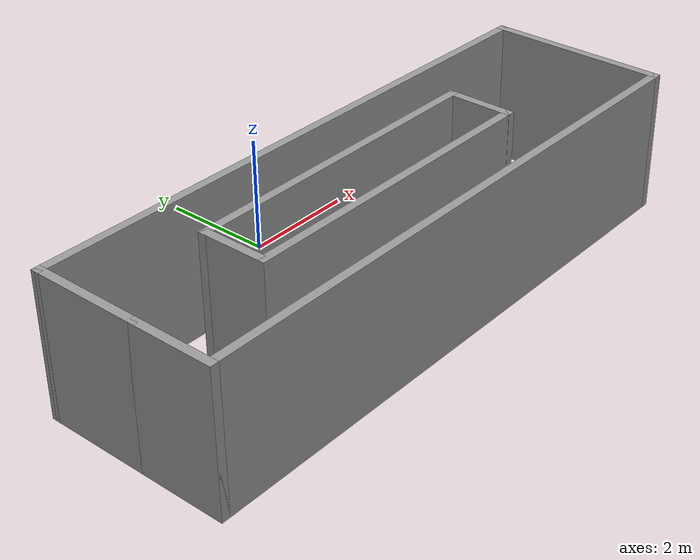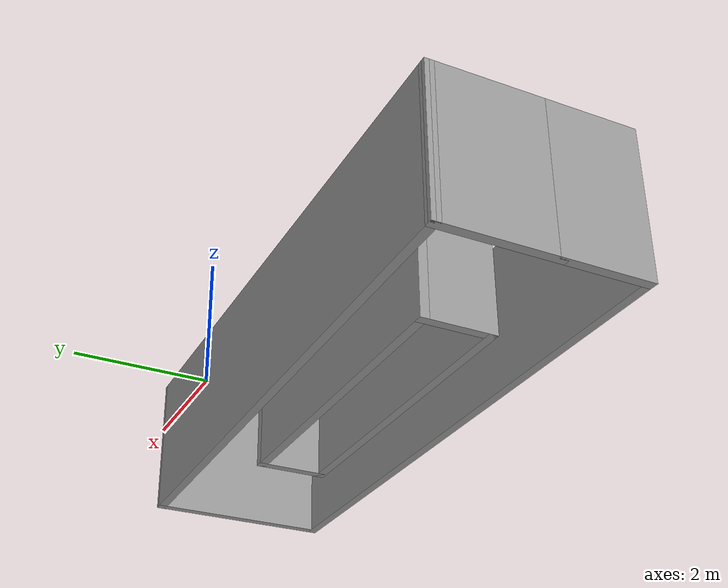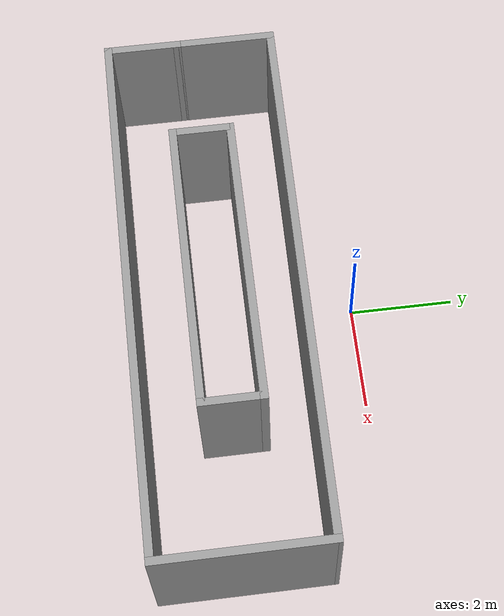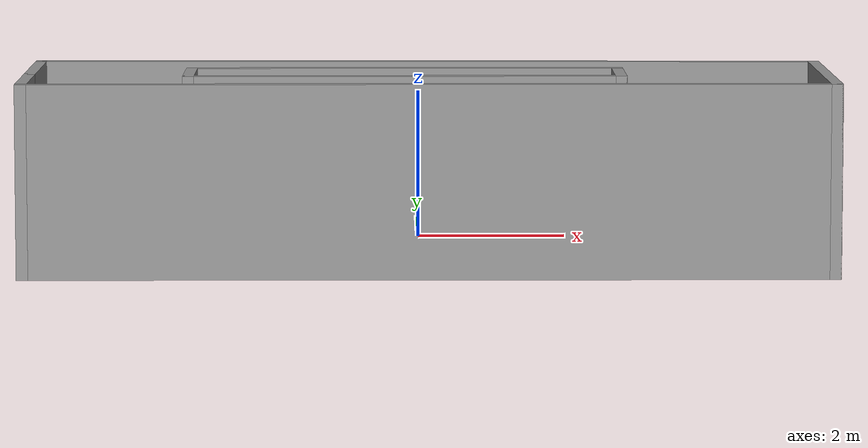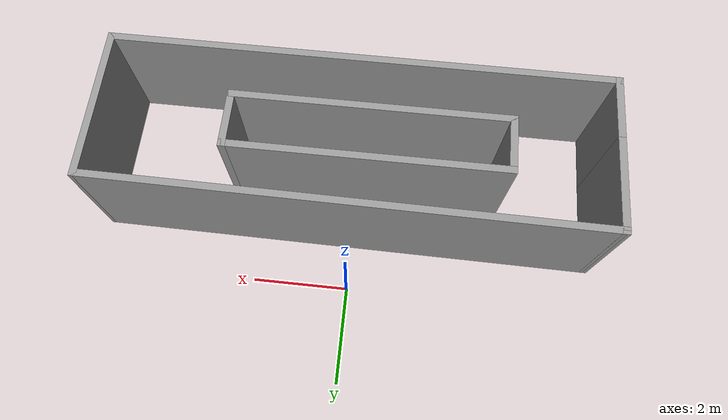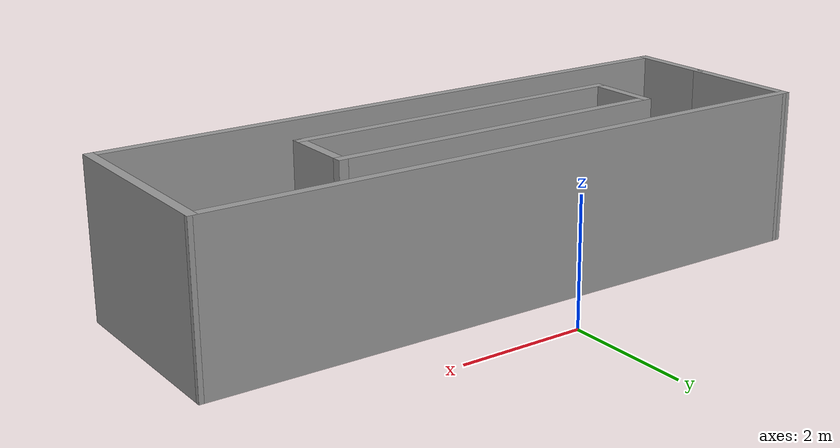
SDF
<?xml version='1.0'?>
<sdf version='1.6'>
  <model name='wu3'>
    <pose frame=''>0.115 -2.57964 0 0 -0 0</pose>
    <link name='Wall_0'>
      <collision name='Wall_0_Collision'>
        <geometry>
          <box>
            <size>2 0.15 2.5</size>
          </box>
        </geometry>
        <pose frame=''>0 0 1.25 0 -0 0</pose>
      </collision>
      <visual name='Wall_0_Visual'>
        <pose frame=''>0 0 1.25 0 -0 0</pose>
        <geometry>
          <box>
            <size>2 0.15 2.5</size>
          </box>
        </geometry>
        <material>
          <script>
            <uri>file://media/materials/scripts/gazebo.material</uri>
            <name>Gazebo/Grey</name>
          </script>
          <ambient>1 1 1 1</ambient>
        </material>
        <meta>
          <layer>0</layer>
        </meta>
      </visual>
      <pose frame=''>-5.175 0.67464 0 0 -0 1.5708</pose>
    </link>
    <link name='Wall_10'>
      <collision name='Wall_10_Collision'>
        <geometry>
          <box>
            <size>5.75 0.15 2.5</size>
          </box>
        </geometry>
        <pose frame=''>0 0 1.25 0 -0 0</pose>
      </collision>
      <visual name='Wall_10_Visual'>
        <pose frame=''>0 0 1.25 0 -0 0</pose>
        <geometry>
          <box>
            <size>5.75 0.15 2.5</size>
          </box>
        </geometry>
        <material>
          <script>
            <uri>file://media/materials/scripts/gazebo.material</uri>
            <name>Gazebo/Grey</name>
          </script>
          <ambient>1 1 1 1</ambient>
        </material>
        <meta>
          <layer>0</layer>
        </meta>
      </visual>
      <pose frame=''>-0.305 0.589639 0 0 -0 3.14159</pose>
    </link>
    <link name='Wall_2'>
      <collision name='Wall_2_Collision'>
        <geometry>
          <box>
            <size>1.5 0.15 2.5</size>
          </box>
        </geometry>
        <pose frame=''>0 0 1.25 0 -0 0</pose>
      </collision>
      <visual name='Wall_2_Visual'>
        <pose frame=''>0 0 1.25 0 -0 0</pose>
        <geometry>
          <box>
            <size>1.5 0.15 2.5</size>
          </box>
        </geometry>
        <material>
          <script>
            <uri>file://media/materials/scripts/gazebo.material</uri>
            <name>Gazebo/Grey</name>
          </script>
          <ambient>1 1 1 1</ambient>
        </material>
        <meta>
          <layer>0</layer>
        </meta>
      </visual>
      <pose frame=''>-5.175 -0.925361 0 0 -0 -1.5708</pose>
    </link>
    <link name='Wall_3'>
      <collision name='Wall_3_Collision'>
        <geometry>
          <box>
            <size>10.5 0.15 2.5</size>
          </box>
        </geometry>
        <pose frame=''>0 0 1.25 0 -0 0</pose>
      </collision>
      <visual name='Wall_3_Visual'>
        <pose frame=''>0 0 1.25 0 -0 0</pose>
        <geometry>
          <box>
            <size>10.5 0.15 2.5</size>
          </box>
        </geometry>
        <material>
          <script>
            <uri>file://media/materials/scripts/gazebo.material</uri>
            <name>Gazebo/Grey</name>
          </script>
          <ambient>1 1 1 1</ambient>
        </material>
        <meta>
          <layer>0</layer>
        </meta>
      </visual>
      <pose frame=''>0 -1.60036 0 0 -0 0</pose>
    </link>
    <link name='Wall_4'>
      <collision name='Wall_4_Collision'>
        <geometry>
          <box>
            <size>3.25 0.15 2.5</size>
          </box>
        </geometry>
        <pose frame=''>0 0 1.25 0 -0 0</pose>
      </collision>
      <visual name='Wall_4_Visual'>
        <pose frame=''>0 0 1.25 0 -0 0</pose>
        <geometry>
          <box>
            <size>3.25 0.15 2.5</size>
          </box>
        </geometry>
        <material>
          <script>
            <uri>file://media/materials/scripts/gazebo.material</uri>
            <name>Gazebo/Grey</name>
          </script>
          <ambient>1 1 1 1</ambient>
        </material>
        <meta>
          <layer>0</layer>
        </meta>
      </visual>
      <pose frame=''>5.175 -0.050361 0 0 -0 1.5708</pose>
    </link>
    <link name='Wall_5'>
      <collision name='Wall_5_Collision'>
        <geometry>
          <box>
            <size>10.5005 0.15 2.5</size>
          </box>
        </geometry>
        <pose frame=''>0 0 1.25 0 -0 0</pose>
      </collision>
      <visual name='Wall_5_Visual'>
        <pose frame=''>0 0 1.25 0 -0 0</pose>
        <geometry>
          <box>
            <size>10.5005 0.15 2.5</size>
          </box>
        </geometry>
        <material>
          <script>
            <uri>file://media/materials/scripts/gazebo.material</uri>
            <name>Gazebo/Grey</name>
          </script>
          <ambient>1 1 1 1</ambient>
        </material>
        <meta>
          <layer>0</layer>
        </meta>
      </visual>
      <pose frame=''>0 1.54964 0 0 -0 3.13193</pose>
    </link>
    <link name='Wall_7'>
      <collision name='Wall_7_Collision'>
        <geometry>
          <box>
            <size>1.25 0.15 2.5</size>
          </box>
        </geometry>
        <pose frame=''>0 0 1.25 0 -0 0</pose>
      </collision>
      <visual name='Wall_7_Visual'>
        <pose frame=''>0 0 1.25 0 -0 0</pose>
        <geometry>
          <box>
            <size>1.25 0.15 2.5</size>
          </box>
        </geometry>
        <material>
          <script>
            <uri>file://media/materials/scripts/gazebo.material</uri>
            <name>Gazebo/Grey</name>
          </script>
          <ambient>1 1 1 1</ambient>
        </material>
        <meta>
          <layer>0</layer>
        </meta>
      </visual>
      <pose frame=''>-3.105 0.03964 0 0 -0 -1.5708</pose>
    </link>
    <link name='Wall_8'>
      <collision name='Wall_8_Collision'>
        <geometry>
          <box>
            <size>5.75 0.15 2.5</size>
          </box>
        </geometry>
        <pose frame=''>0 0 1.25 0 -0 0</pose>
      </collision>
      <visual name='Wall_8_Visual'>
        <pose frame=''>0 0 1.25 0 -0 0</pose>
        <geometry>
          <box>
            <size>5.75 0.15 2.5</size>
          </box>
        </geometry>
        <material>
          <script>
            <uri>file://media/materials/scripts/gazebo.material</uri>
            <name>Gazebo/Grey</name>
          </script>
          <ambient>1 1 1 1</ambient>
        </material>
        <meta>
          <layer>0</layer>
        </meta>
      </visual>
      <pose frame=''>-0.305 -0.51036 0 0 -0 0</pose>
    </link>
    <link name='Wall_9'>
      <collision name='Wall_9_Collision'>
        <geometry>
          <box>
            <size>1.25 0.15 2.5</size>
          </box>
        </geometry>
        <pose frame=''>0 0 1.25 0 -0 0</pose>
      </collision>
      <visual name='Wall_9_Visual'>
        <pose frame=''>0 0 1.25 0 -0 0</pose>
        <geometry>
          <box>
            <size>1.25 0.15 2.5</size>
          </box>
        </geometry>
        <material>
          <script>
            <uri>file://media/materials/scripts/gazebo.material</uri>
            <name>Gazebo/Grey</name>
          </script>
          <ambient>1 1 1 1</ambient>
        </material>
        <meta>
          <layer>0</layer>
        </meta>
      </visual>
      <pose frame=''>2.495 0.03964 0 0 -0 1.5708</pose>
    </link>
    <static>1</static>
  </model>
</sdf>
